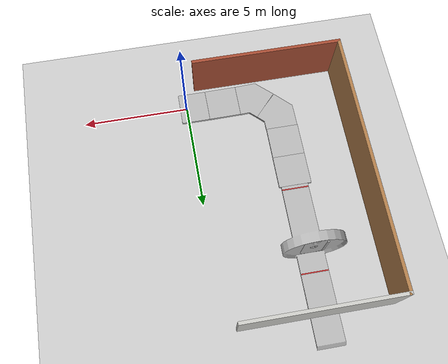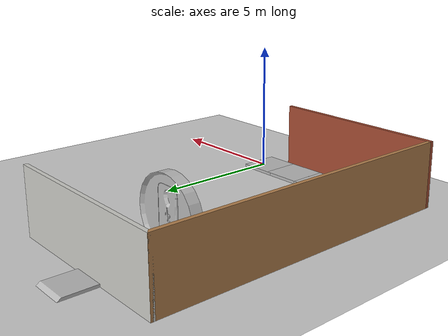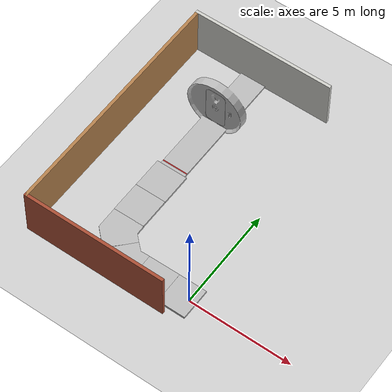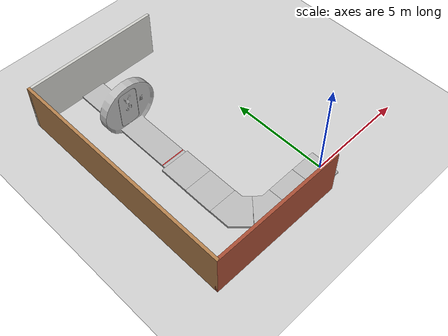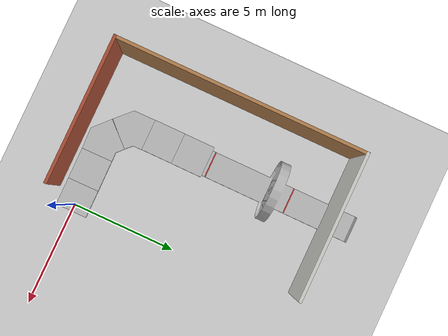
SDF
<sdf version="1.6">
 <world name="default">
  <light name="sun" type="directional">
   <pose>0 0 10 0 -0 0</pose>
   <diffuse>0.8 0.8 0.8 1</diffuse>
   <specular>0.2 0.2 0.2 1</specular>
   <attenuation>
    <range>1000</range>
    <constant>0.9</constant>
    <linear>0.01</linear>
    <quadratic>0.001</quadratic>
   </attenuation>
   <direction>-0.5 0.1 -0.9</direction>
  </light>
  <model name="ground_plane">
   <static>1</static>
   <link name="link">
    <collision name="collision">
     <geometry><plane><normal>0 0 1</normal><size>100 100</size></plane></geometry>
     <surface>
      <contact><collide_bitmask>65535</collide_bitmask></contact>
      <friction><ode><mu>100</mu><mu2>50</mu2></ode></friction>
     </surface>
    </collision>
    <visual name="visual">
     <cast_shadows>0</cast_shadows>
     <geometry><plane><normal>0 0 1</normal><size>100 100</size></plane></geometry>
     <material>
      <script><uri>file://media/materials/scripts/gazebo.material</uri><name>Gazebo/Grey</name></script>
     </material>
    </visual>
   </link>
  </model>
  <gravity>0 0 -9.8</gravity>
  <magnetic_field>6e-06 2.3e-05 -4.2e-05</magnetic_field>
  <atmosphere type="adiabatic"/>
  <physics name="default_physics" default="0" type="ode">
   <max_step_size>0.001</max_step_size>
   <real_time_factor>1</real_time_factor>
   <real_time_update_rate>1000</real_time_update_rate>
  </physics>
  <scene><ambient>0.4 0.4 0.4 1</ambient><background>0.7 0.7 0.7 1</background><shadows>1</shadows></scene>
  <audio><device>default</device></audio>
  <spherical_coordinates>
   <surface_model>EARTH_WGS84</surface_model>
   <latitude_deg>0</latitude_deg>
   <longitude_deg>0</longitude_deg>
   <elevation>0</elevation>
   <heading_deg>0</heading_deg>
  </spherical_coordinates>
  <model name="test">
   <pose>-4.00141 4.87142 0 0 -0 1.57</pose>
   <link name="Wall_5">
    <collision name="Wall_5_Collision">
     <geometry><box><size>7 0.15 2.5</size></box></geometry>
     <pose>0 0 1.25 0 -0 0</pose>
    </collision>
    <visual name="Wall_5_Visual">
     <pose>0 0 1.25 0 -0 0</pose>
     <geometry><box><size>7 0.15 2.5</size></box></geometry>
     <material>
      <script><uri>file://media/materials/scripts/gazebo.material</uri><name>Gazebo/Bricks</name></script>
      <ambient>1 1 1 1</ambient>
     </material>
     <meta><layer>0</layer></meta>
    </visual>
    <pose>-5.925 0 0 0 -0 1.5708</pose>
   </link>
   <link name="Wall_6">
    <collision name="Wall_6_Collision">
     <geometry><box><size>12 0.15 2.5</size></box></geometry>
     <pose>0 0 1.25 0 -0 0</pose>
    </collision>
    <visual name="Wall_6_Visual">
     <pose>0 0 1.25 0 -0 0</pose>
     <geometry><box><size>12 0.15 2.5</size></box></geometry>
     <material>
      <script><uri>file://media/materials/scripts/gazebo.material</uri><name>Gazebo/Wood</name></script>
      <ambient>1 1 1 1</ambient>
     </material>
     <meta><layer>0</layer></meta>
    </visual>
    <pose>0 3.425 0 0 -0 0</pose>
   </link>
   <link name="Wall_7">
    <collision name="Wall_7_Collision">
     <geometry><box><size>7 0.15 2.5</size></box></geometry>
     <pose>0 0 1.25 0 -0 0</pose>
    </collision>
    <visual name="Wall_7_Visual">
     <pose>0 0 1.25 0 -0 0</pose>
     <geometry><box><size>7 0.15 2.5</size></box></geometry>
     <material>
      <script><uri>file://media/materials/scripts/gazebo.material</uri><name>Gazebo/CeilingTiled</name></script>
      <ambient>1 1 1 1</ambient>
     </material>
     <meta><layer>0</layer></meta>
    </visual>
    <pose>5.925 0 0 0 -0 -1.5708</pose>
   </link>
   <static>1</static>
  </model>
  <model name="walk">
   <model name="walkway_metal_45">
    <static>1</static>
    <link name="link">
     <collision name="collision">
      <pose>0 0.538815 0.076075 0 -0 0</pose>
      <geometry><box><size>1.524 1.07763 0.15215</size></box></geometry>
     </collision>
     <collision name="collision2">
      <pose>0.15793 0.92 0.076075 0 0 -0.785398</pose>
      <geometry><box><size>1.524 1.07763 0.15215</size></box></geometry>
     </collision>
     <visual name="visual">
      <geometry>
       <mesh><scale>0.001 0.001 0.001</scale><uri>model://walkway_metal_45/meshes/mesh.obj</uri></mesh>
      </geometry>
     </visual>
    </link>
    <pose>-0.29994 -0.621857 0 0 -0 0.795746</pose>
   </model>
   <model name="walkway_metal_45_0">
    <static>1</static>
    <link name="link">
     <collision name="collision">
      <pose>0 0.538815 0.076075 0 -0 0</pose>
      <geometry><box><size>1.524 1.07763 0.15215</size></box></geometry>
     </collision>
     <collision name="collision2">
      <pose>0.15793 0.92 0.076075 0 0 -0.785398</pose>
      <geometry><box><size>1.524 1.07763 0.15215</size></box></geometry>
     </collision>
     <visual name="visual">
      <geometry>
       <mesh><scale>0.001 0.001 0.001</scale><uri>model://walkway_metal_45/meshes/mesh.obj</uri></mesh>
      </geometry>
     </visual>
    </link>
    <pose>1.02467 -1.11049 0 0 -0 1.61077</pose>
   </model>
   <model name="walkway_metal_straight">
    <static>1</static>
    <link name="link">
     <collision name="collision">
      <pose>0 0.762 0.076075 0 -0 0</pose>
      <geometry><box><size>1.524 1.524 0.15215</size></box></geometry>
     </collision>
     <visual name="visual">
      <geometry>
       <mesh><scale>0.001 0.001 0.001</scale><uri>model://walkway_metal_straight/meshes/mesh.obj</uri></mesh>
      </geometry>
     </visual>
    </link>
    <pose>-0.858213 2.18469 0 0 -0 0</pose>
   </model>
   <model name="walkway_metal_straight_0">
    <static>1</static>
    <link name="link">
     <collision name="collision">
      <pose>0 0.762 0.076075 0 -0 0</pose>
      <geometry><box><size>1.524 1.524 0.15215</size></box></geometry>
     </collision>
     <visual name="visual">
      <geometry>
       <mesh><scale>0.001 0.001 0.001</scale><uri>model://walkway_metal_straight/meshes/mesh.obj</uri></mesh>
      </geometry>
     </visual>
    </link>
    <pose>-0.861279 0.663975 0 0 -0 0</pose>
   </model>
   <model name="walkway_metal_straight_1">
    <static>1</static>
    <link name="link">
     <collision name="collision">
      <pose>0 0.762 0.076075 0 -0 0</pose>
      <geometry><box><size>1.524 1.524 0.15215</size></box></geometry>
     </collision>
     <visual name="visual">
      <geometry>
       <mesh><scale>0.001 0.001 0.001</scale><uri>model://walkway_metal_straight/meshes/mesh.obj</uri></mesh>
      </geometry>
     </visual>
    </link>
    <pose>0.994763 -1.11631 0 0 0 -1.56128</pose>
   </model>
   <static>0</static>
   <pose>-3.53325 1.07994 -0.049892 0 -0 0</pose>
  </model>
  <model name="src_doorway">
   <pose>-4.35191 7.95674 0 0 -0 3.14159</pose>
   <model name="src_doorframe">
    <static>1</static>
    <link name="frame">
     <inertial>
      <pose>0 0 0.05 0 -0 0</pose>
      <mass>2873</mass>
      <inertia><ixx>16895.6</ixx><ixy>0</ixy><ixz>0</ixz><iyy>376.483</iyy><iyz>0</iyz><izz>17267.3</izz></inertia>
     </inertial>
     <collision name="platform">
      <pose>0 0 0.05 0 -0 0</pose>
      <geometry><box><size>1.25 8.209 0.1</size></box></geometry>
      <surface>
       <contact><ode><kp>1e+16</kp><kd>100</kd><max_vel>1000</max_vel><min_depth>0.001</min_depth></ode></contact>
       <friction><ode><mu>1.5</mu><mu2>1.5</mu2></ode></friction>
      </surface>
     </collision>
     <collision name="front_ramp_1">
      <pose>0 4.1135 0.05 0.96 -0 0</pose>
      <geometry><box><size>1.25 0.072 0.072</size></box></geometry>
      <surface>
       <contact><ode><kp>1e+16</kp><kd>100</kd><max_vel>1000</max_vel><min_depth>0.001</min_depth></ode></contact>
       <friction><ode><mu>1.5</mu><mu2>1.5</mu2></ode></friction>
      </surface>
     </collision>
     <collision name="front_ramp_2">
      <pose>0 4.1635 0.031 0.96 -0 0</pose>
      <geometry><box><size>1.25 0.045 0.045</size></box></geometry>
      <surface>
       <contact><ode><kp>1e+16</kp><kd>100</kd><max_vel>1000</max_vel><min_depth>0.001</min_depth></ode></contact>
       <friction><ode><mu>1.5</mu><mu2>1.5</mu2></ode></friction>
      </surface>
     </collision>
     <collision name="front_ramp_3">
      <pose>0 4.1935 0.02 0.96 -0 0</pose>
      <geometry><box><size>1.25 0.028 0.028</size></box></geometry>
      <surface>
       <contact><ode><kp>1e+16</kp><kd>100</kd><max_vel>1000</max_vel><min_depth>0.001</min_depth></ode></contact>
       <friction><ode><mu>1.5</mu><mu2>1.5</mu2></ode></friction>
      </surface>
     </collision>
     <collision name="front_ramp_4">
      <pose>0 4.2135 0.012 0.96 -0 0</pose>
      <geometry><box><size>1.25 0.017 0.017</size></box></geometry>
      <surface>
       <contact><ode><kp>1e+16</kp><kd>100</kd><max_vel>1000</max_vel><min_depth>0.001</min_depth></ode></contact>
       <friction><ode><mu>1.5</mu><mu2>1.5</mu2></ode></friction>
      </surface>
     </collision>
     <collision name="front_ramp_5">
      <pose>0 4.2235 0.008 0.96 -0 0</pose>
      <geometry><box><size>1.25 0.012 0.012</size></box></geometry>
      <surface>
       <contact><ode><kp>1e+16</kp><kd>100</kd><max_vel>1000</max_vel><min_depth>0.001</min_depth></ode></contact>
       <friction><ode><mu>1.5</mu><mu2>1.5</mu2></ode></friction>
      </surface>
     </collision>
     <collision name="front_ramp_6">
      <pose>0 4.231 0.005 0.96 -0 0</pose>
      <geometry><box><size>1.25 0.008 0.008</size></box></geometry>
      <surface>
       <contact><ode><kp>1e+16</kp><kd>100</kd><max_vel>1000</max_vel><min_depth>0.001</min_depth></ode></contact>
       <friction><ode><mu>1.5</mu><mu2>1.5</mu2></ode></friction>
      </surface>
     </collision>
     <collision name="front_ramp_7">
      <pose>0 4.2365 0.003 0.96 -0 0</pose>
      <geometry><box><size>1.25 0.005 0.005</size></box></geometry>
      <surface>
       <contact><ode><kp>1e+16</kp><kd>100</kd><max_vel>1000</max_vel><min_depth>0.001</min_depth></ode></contact>
       <friction><ode><mu>1.5</mu><mu2>1.5</mu2></ode></friction>
      </surface>
     </collision>
     <collision name="front_ramp_8">
      <pose>0 4.2405 0.002 0.96 -0 0</pose>
      <geometry><box><size>1.25 0.0026 0.0026</size></box></geometry>
      <surface>
       <contact><ode><kp>1e+16</kp><kd>100</kd><max_vel>1000</max_vel><min_depth>0.001</min_depth></ode></contact>
       <friction><ode><mu>1.5</mu><mu2>1.5</mu2></ode></friction>
      </surface>
     </collision>
     <collision name="back_ramp_1">
      <pose>0 -4.1135 0.05 -0.96 0 0</pose>
      <geometry><box><size>1.25 0.072 0.072</size></box></geometry>
      <surface>
       <contact><ode><kp>1e+16</kp><kd>100</kd><max_vel>1000</max_vel><min_depth>0.001</min_depth></ode></contact>
       <friction><ode><mu>1.5</mu><mu2>1.5</mu2></ode></friction>
      </surface>
     </collision>
     <collision name="back_ramp_2">
      <pose>0 -4.1635 0.031 -0.96 0 0</pose>
      <geometry><box><size>1.25 0.045 0.045</size></box></geometry>
      <surface>
       <contact><ode><kp>1e+16</kp><kd>100</kd><max_vel>1000</max_vel><min_depth>0.001</min_depth></ode></contact>
       <friction><ode><mu>1.5</mu><mu2>1.5</mu2></ode></friction>
      </surface>
     </collision>
     <collision name="back_ramp_3">
      <pose>0 -4.1935 0.02 -0.96 0 0</pose>
      <geometry><box><size>1.25 0.028 0.028</size></box></geometry>
      <surface>
       <contact><ode><kp>1e+16</kp><kd>100</kd><max_vel>1000</max_vel><min_depth>0.001</min_depth></ode></contact>
       <friction><ode><mu>1.5</mu><mu2>1.5</mu2></ode></friction>
      </surface>
     </collision>
     <collision name="back_ramp_4">
      <pose>0 -4.2135 0.012 -0.96 0 0</pose>
      <geometry><box><size>1.25 0.017 0.017</size></box></geometry>
      <surface>
       <contact><ode><kp>1e+16</kp><kd>100</kd><max_vel>1000</max_vel><min_depth>0.001</min_depth></ode></contact>
       <friction><ode><mu>1.5</mu><mu2>1.5</mu2></ode></friction>
      </surface>
     </collision>
     <collision name="back_ramp_5">
      <pose>0 -4.2235 0.008 -0.96 0 0</pose>
      <geometry><box><size>1.25 0.012 0.012</size></box></geometry>
      <surface>
       <contact><ode><kp>1e+16</kp><kd>100</kd><max_vel>1000</max_vel><min_depth>0.001</min_depth></ode></contact>
       <friction><ode><mu>1.5</mu><mu2>1.5</mu2></ode></friction>
      </surface>
     </collision>
     <collision name="back_ramp_6">
      <pose>0 -4.231 0.005 -0.96 0 0</pose>
      <geometry><box><size>1.25 0.008 0.008</size></box></geometry>
      <surface>
       <contact><ode><kp>1e+16</kp><kd>100</kd><max_vel>1000</max_vel><min_depth>0.001</min_depth></ode></contact>
       <friction><ode><mu>1.5</mu><mu2>1.5</mu2></ode></friction>
      </surface>
     </collision>
     <collision name="back_ramp_7">
      <pose>0 -4.2365 0.003 -0.96 0 0</pose>
      <geometry><box><size>1.25 0.005 0.005</size></box></geometry>
      <surface>
       <contact><ode><kp>1e+16</kp><kd>100</kd><max_vel>1000</max_vel><min_depth>0.001</min_depth></ode></contact>
       <friction><ode><mu>1</mu><mu2>1</mu2></ode></friction>
      </surface>
     </collision>
     <collision name="back_ramp_8">
      <pose>0 -4.2405 0.002 -0.96 0 0</pose>
      <geometry><box><size>1.25 0.0026 0.0026</size></box></geometry>
      <surface>
       <contact><ode><kp>1e+16</kp><kd>100</kd><max_vel>1000</max_vel><min_depth>0.001</min_depth></ode></contact>
       <friction><ode><mu>1.5</mu><mu2>1.5</mu2></ode></friction>
      </surface>
     </collision>
     <collision name="left_1">
      <pose>0.665 0 1.2 0 -0 0</pose>
      <geometry><box><size>0.3 0.19 2.2</size></box></geometry>
      <surface>
       <contact><ode><kp>1e+16</kp><kd>100</kd><max_vel>1000</max_vel><min_depth>0.001</min_depth></ode></contact>
       <friction><ode><mu>1.5</mu><mu2>1.5</mu2></ode></friction>
      </surface>
     </collision>
     <collision name="left_2">
      <pose>0.96 0 1.21 0 -0 0</pose>
      <geometry><box><size>0.3 0.19 1.65</size></box></geometry>
      <surface>
       <contact><ode><kp>1e+16</kp><kd>100</kd><max_vel>1000</max_vel><min_depth>0.001</min_depth></ode></contact>
       <friction><ode><mu>1.5</mu><mu2>1.5</mu2></ode></friction>
      </surface>
     </collision>
     <collision name="left_3">
      <pose>1.23 0 1.2 0 -0 0</pose>
      <geometry><box><size>0.25 0.19 0.6</size></box></geometry>
      <surface>
       <contact><ode><kp>1e+16</kp><kd>100</kd><max_vel>1000</max_vel><min_depth>0.001</min_depth></ode></contact>
       <friction><ode><mu>1.5</mu><mu2>1.5</mu2></ode></friction>
      </surface>
     </collision>
     <collision name="right_1">
      <pose>-0.665 0 1.2 0 -0 0</pose>
      <geometry><box><size>0.3 0.19 2.2</size></box></geometry>
      <surface>
       <contact><ode><kp>1e+16</kp><kd>100</kd><max_vel>1000</max_vel><min_depth>0.001</min_depth></ode></contact>
       <friction><ode><mu>1.5</mu><mu2>1.5</mu2></ode></friction>
      </surface>
     </collision>
     <collision name="right_2">
      <pose>-0.96 0 1.21 0 -0 0</pose>
      <geometry><box><size>0.3 0.19 1.65</size></box></geometry>
      <surface>
       <contact><ode><kp>1e+16</kp><kd>100</kd><max_vel>1000</max_vel><min_depth>0.001</min_depth></ode></contact>
       <friction><ode><mu>1.5</mu><mu2>1.5</mu2></ode></friction>
      </surface>
     </collision>
     <collision name="right_3">
      <pose>-1.23 0 1.2 0 -0 0</pose>
      <geometry><box><size>0.25 0.19 0.6</size></box></geometry>
      <surface>
       <contact><ode><kp>1e+16</kp><kd>100</kd><max_vel>1000</max_vel><min_depth>0.001</min_depth></ode></contact>
       <friction><ode><mu>1.5</mu><mu2>1.5</mu2></ode></friction>
      </surface>
     </collision>
     <collision name="top_1">
      <pose>0 0 2.32 0 -0 0</pose>
      <geometry><box><size>1.25 0.19 0.25</size></box></geometry>
      <surface>
       <contact><ode><kp>1e+16</kp><kd>100</kd><max_vel>1000</max_vel><min_depth>0.001</min_depth></ode></contact>
       <friction><ode><mu>1.5</mu><mu2>1.5</mu2></ode></friction>
      </surface>
     </collision>
     <collision name="diagonal_top_left">
      <pose>0.55 0 2.2 0 0.785 0</pose>
      <geometry><box><size>0.3 0.19 0.25</size></box></geometry>
      <surface>
       <contact><ode><kp>1e+16</kp><kd>100</kd><max_vel>1000</max_vel><min_depth>0.001</min_depth></ode></contact>
       <friction><ode><mu>1.5</mu><mu2>1.5</mu2></ode></friction>
      </surface>
     </collision>
     <collision name="diagonal_top_right">
      <pose>-0.55 0 2.2 0 -0.785 0</pose>
      <geometry><box><size>0.3 0.19 0.25</size></box></geometry>
      <surface>
       <contact><ode><kp>1e+16</kp><kd>100</kd><max_vel>1000</max_vel><min_depth>0.001</min_depth></ode></contact>
       <friction><ode><mu>1.5</mu><mu2>1.5</mu2></ode></friction>
      </surface>
     </collision>
     <collision name="diagonal_bottom_left">
      <pose>0.5 0 0.185 0 -0.785 0</pose>
      <geometry><box><size>0.3 0.19 0.07</size></box></geometry>
      <surface>
       <contact><ode><kp>1e+16</kp><kd>100</kd><max_vel>1000</max_vel><min_depth>0.001</min_depth></ode></contact>
       <friction><ode><mu>1.5</mu><mu2>1.5</mu2></ode></friction>
      </surface>
     </collision>
     <collision name="diagonal_bottom_right">
      <pose>-0.5 0 0.185 0 0.785 0</pose>
      <geometry><box><size>0.3 0.19 0.07</size></box></geometry>
      <surface>
       <contact><ode><kp>1e+16</kp><kd>100</kd><max_vel>1000</max_vel><min_depth>0.001</min_depth></ode></contact>
       <friction><ode><mu>1.5</mu><mu2>1.5</mu2></ode></friction>
      </surface>
     </collision>
     <visual name="visual">
      <geometry><mesh><uri>model://src_doorway/meshes/doorway_base.dae</uri></mesh></geometry>
     </visual>
     <visual name="start_line">
      <pose>0 3 0.1 0 -0 0</pose>
      <geometry><box><size>1.25 0.05 0.001</size></box></geometry>
      <material>
       <script><uri>file://media/materials/scripts/gazebo.material</uri><name>Gazebo/Red</name></script>
      </material>
     </visual>
     <visual name="finish_line">
      <pose>0 -1 0.1 0 -0 0</pose>
      <geometry><box><size>1.25 0.05 0.001</size></box></geometry>
      <material>
       <script><uri>file://media/materials/scripts/gazebo.material</uri><name>Gazebo/Red</name></script>
      </material>
     </visual>
    </link>
   </model>
   <model name="src_door">
    <link name="door">
     <pose>0 0 1 0 -0 0</pose>
     <inertial>
      <pose>0 0 0.14 0 -0 0</pose>
      <mass>182</mass>
      <inertia><ixx>63.04</ixx><ixy>0</ixy><ixz>0</ixz><iyy>69.932</iyy><iyz>0</iyz><izz>7.979</izz></inertia>
     </inertial>
     <collision name="center">
      <pose>0 0 0.14 0 -0 0</pose>
      <geometry><box><size>0.7 0.19 2.03</size></box></geometry>
      <surface>
       <contact><ode><kp>1e+16</kp><kd>100</kd><max_vel>1000</max_vel><min_depth>0.001</min_depth></ode></contact>
       <friction><ode><mu>1.5</mu><mu2>1.5</mu2></ode></friction>
      </surface>
     </collision>
     <collision name="left">
      <pose>-0.4 0 0.18 0 -0 0</pose>
      <geometry><box><size>0.17 0.19 1.7</size></box></geometry>
      <surface>
       <contact><ode><kp>1e+16</kp><kd>100</kd><max_vel>1000</max_vel><min_depth>0.001</min_depth></ode></contact>
       <friction><ode><mu>1.5</mu><mu2>1.5</mu2></ode></friction>
      </surface>
     </collision>
     <collision name="right">
      <pose>0.4 0 0.18 0 -0 0</pose>
      <geometry><box><size>0.17 0.19 1.7</size></box></geometry>
      <surface>
       <contact><ode><kp>1e+16</kp><kd>100</kd><max_vel>1000</max_vel><min_depth>0.001</min_depth></ode></contact>
       <friction><ode><mu>1.5</mu><mu2>1.5</mu2></ode></friction>
      </surface>
     </collision>
     <collision name="top_left">
      <pose>-0.36 0 1.04 1.57 -0 0</pose>
      <geometry><cylinder><radius>0.1</radius><length>0.18</length></cylinder></geometry>
      <surface>
       <contact><ode><kp>1e+16</kp><kd>100</kd><max_vel>1000</max_vel><min_depth>0.001</min_depth></ode></contact>
       <friction><ode><mu>1.5</mu><mu2>1.5</mu2></ode></friction>
      </surface>
     </collision>
     <collision name="top_right">
      <pose>0.36 0 1.04 1.57 -0 0</pose>
      <geometry><cylinder><radius>0.1</radius><length>0.18</length></cylinder></geometry>
      <surface>
       <contact><ode><kp>1e+16</kp><kd>100</kd><max_vel>1000</max_vel><min_depth>0.001</min_depth></ode></contact>
       <friction><ode><mu>1.5</mu><mu2>1.5</mu2></ode></friction>
      </surface>
     </collision>
     <collision name="bottom_left">
      <pose>-0.36 0 -0.73 1.57 -0 0</pose>
      <geometry><cylinder><radius>0.1</radius><length>0.18</length></cylinder></geometry>
      <surface>
       <contact><ode><kp>1e+16</kp><kd>100</kd><max_vel>1000</max_vel><min_depth>0.001</min_depth></ode></contact>
       <friction><ode><mu>1.5</mu><mu2>1.5</mu2></ode></friction>
      </surface>
     </collision>
     <collision name="bottom_right">
      <pose>0.36 0 -0.73 1.57 -0 0</pose>
      <geometry><cylinder><radius>0.1</radius><length>0.18</length></cylinder></geometry>
      <surface>
       <contact><ode><kp>1e+16</kp><kd>100</kd><max_vel>1000</max_vel><min_depth>0.001</min_depth></ode></contact>
       <friction><ode><mu>1.5</mu><mu2>1.5</mu2></ode></friction>
      </surface>
     </collision>
     <collision name="hinge">
      <pose>0.507 -0.135 0.17 0 -0 0</pose>
      <geometry><cylinder><radius>0.038</radius><length>1.48</length></cylinder></geometry>
      <surface>
       <contact><ode><kp>1e+16</kp><kd>100</kd><max_vel>1000</max_vel><min_depth>0.001</min_depth></ode></contact>
       <friction><ode><mu>1.5</mu><mu2>1.5</mu2></ode></friction>
      </surface>
     </collision>
     <visual name="visual">
      <pose>0 0 -1 0 -0 0</pose>
      <geometry><mesh><uri>model://src_doorway/meshes/doorway_door.dae</uri></mesh></geometry>
     </visual>
    </link>
    <link name="button">
     <pose>-0.735 0.15 1.247 0 -0 0</pose>
     <inertial>
      <mass>0.2</mass>
      <inertia>
       <ixx>0.000432</ixx>
       <ixy>0</ixy>
       <ixz>0</ixz>
       <iyy>0.000487</iyy>
       <iyz>0</iyz>
       <izz>6.54e-05</izz>
      </inertia>
     </inertial>
     <collision name="collision">
      <geometry><box><size>0.06 0.018 0.16</size></box></geometry>
      <surface>
       <contact><ode><kp>1e+16</kp><kd>100</kd><max_vel>1000</max_vel><min_depth>0.001</min_depth></ode></contact>
       <friction><ode><mu>1.5</mu><mu2>1.5</mu2></ode></friction>
      </surface>
     </collision>
     <visual name="visual">
      <geometry><box><size>0.06 0.018 0.16</size></box></geometry>
      <material>
       <script>
        <uri>model://src_doorway/materials/scripts</uri>
        <uri>model://src_doorway/materials/textures</uri>
        <name>src_doorway_button/Diffuse</name>
       </script>
      </material>
     </visual>
    </link>
   </model>
   <joint name="hinge" type="revolute">
    <parent>src_doorframe::frame</parent>
    <child>src_door::door</child>
    <pose>0.5 -0.14 0 0 -0 0</pose>
    <axis>
     <xyz>0 0 1</xyz>
     <limit><lower>0</lower><upper>3</upper></limit>
     <dynamics>
      <damping>1</damping>
      <friction>1</friction>
      <spring_reference>0</spring_reference>
      <spring_stiffness>0</spring_stiffness>
     </dynamics>
     <use_parent_model_frame>1</use_parent_model_frame>
    </axis>
    <physics><ode><cfm_damping>1</cfm_damping><limit><cfm>0</cfm><erp>0.2</erp></limit></ode></physics>
   </joint>
   <joint name="button_mechanism" type="prismatic">
    <parent>src_doorframe::frame</parent>
    <child>src_door::button</child>
    <pose>-0.735 0.15 1.247 0 -0 0</pose>
    <axis>
     <xyz>0 1 0</xyz>
     <limit><lower>0</lower><upper>0.01</upper></limit>
     <dynamics>
      <damping>10</damping>
      <spring_stiffness>800</spring_stiffness>
      <spring_reference>0</spring_reference>
     </dynamics>
     <use_parent_model_frame>1</use_parent_model_frame>
    </axis>
    <physics><ode><cfm_damping>1</cfm_damping><limit><cfm>0</cfm><erp>0.2</erp></limit></ode></physics>
   </joint>
  </model>
  <model name="walkway_metal_straight_2">
   <static>1</static>
   <link name="link">
    <collision name="collision">
     <pose>0 0.762 0.076075 0 -0 0</pose>
     <geometry><box><size>1.524 1.524 0.15215</size></box></geometry>
    </collision>
    <visual name="visual">
     <geometry>
      <mesh><scale>0.001 0.001 0.001</scale><uri>model://walkway_metal_straight/meshes/mesh.obj</uri></mesh>
     </geometry>
    </visual>
   </link>
   <pose>-0.431263 -0.783442 -0.052316 0 -0 0</pose>
  </model>
 </world>
</sdf>
